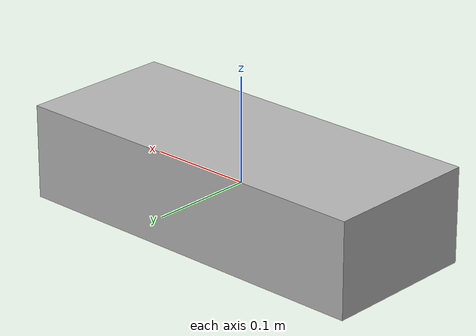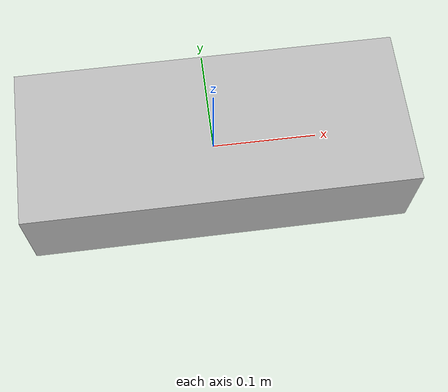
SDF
<?xml version="1.0" ?>
<sdf version="1.3">
  <model name="diybox">
    <static>false</static>

    <link name="base">
      <visual name="visual">
        <geometry>
          <box>
<size>0.365000 0.150000 0.090000</size>
          </box>
        </geometry>
      </visual>
      <collision name="diybox_collision">
        <geometry>
          <box>
<size>0.365000 0.150000 0.090000</size>
          </box>
        </geometry>
        <surface>
          <friction>
            <ode>
<mu>0.010000</mu>
<mu2>0.010000</mu2>
            </ode>
        </friction>
        </surface>
      </collision>
      <inertial>
<mass value="1.046333"/>
        <inertia ixx="1.0" ixy="0.0" ixz="0.0" iyy="1.0" iyz="0.0" izz="1.0"/>
      </inertial>
      <sensor name="diybox_contact" type="contact">
        <plugin name="contact_plugin" filename="libcontact_plugin.so"/>
        <contact>
          <collision>diybox_collision</collision>
        </contact>
      </sensor>
    </link>

  </model>
</sdf>
